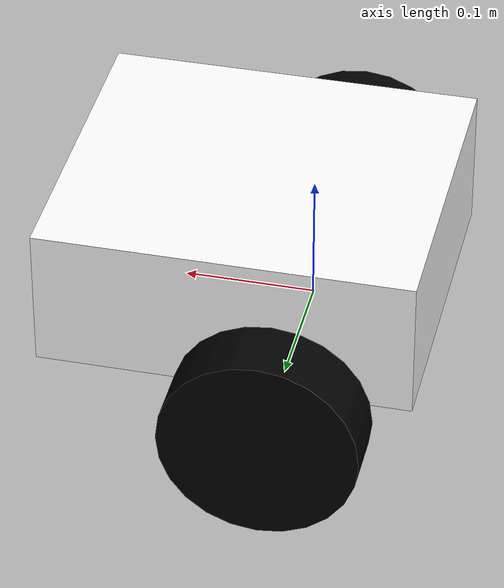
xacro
<?xml version="1.0"?>
<robot xmlns:xacro="http://www.ros.org/wiki/xacro" >

    <xacro:include filename="inertial_macros.xacro"/>

    <material name="white">
        <color rgba="1 1 1 1" />
    </material>

    <material name="orange">
        <color rgba="1 0.3 0.1 1" />
    </material>

    <material name="blue">
        <color rgba="0.2 0.2 1 1" />
    </material>

    <material name="black">
        <color rgba="0 0 0 1" />
    </material>

    <!-- BASE LINK -->

    <link name="base_link">
    </link>

    <!-- CHASSIS LINK -->

    <joint name="chassis_joint" type="fixed">
        <parent link="base_link" />
        <child link="chassis" />
        <origin xyz="-0.1 0 0" />
    </joint>

    <link name="chassis">
        <visual>
            <origin xyz="0.142 0 0.055" />
            <geometry>
                <box size="0.285 0.25 0.11" />
            </geometry>>
            <material name="white" />
        </visual>
        <collision>
            <origin xyz="0.142 0 0.055" />
            <geometry>
                <box size="0.285 0.25 0.11" />
            </geometry>
        </collision>
        <xacro:inertial_box mass="8.0" x="0.285" y="0.25" z="0.11">
            <origin xyz="0.142 0 0.055" rpy="0 0 0"/>
        </xacro:inertial_box>
    </link>

    <gazebo reference="chassis">
        <material>Gazebo/White</material>
    </gazebo>

    <!-- LEFT BACK WHEEL LINK -->
    <joint name="left_back_wheel_joint" type="continuous">
        <parent link="base_link" />
        <child link="left_back_wheel" />
        <origin xyz="0 0.17 0" rpy="-${pi/2} 0 0" />
        <axis xyz="0 0 1" />
    </joint>

    <link name="left_back_wheel">
        <visual>
            <geometry>
                <cylinder radius="0.075" length="0.05" />
            </geometry>
            <material name="black"/>
        </visual>
        <collision>
            <geometry>
                <cylinder radius="0.075" length="0.05" />
            </geometry>
        </collision>
        <xacro:inertial_cylinder mass="1.0" length="0.05" radius="0.075">
            <origin xyz="0 0 0" rpy="0 0 0"/>
        </xacro:inertial_cylinder>
    </link>

    <gazebo reference="left_back_wheel">
        <material>Gazebo/Black</material>
    </gazebo>

    <!-- RIGHT BACK WHEEL LINK -->
    <joint name="right_back_wheel_joint" type="continuous">
        <parent link="base_link" />
        <child link="right_back_wheel" />
        <origin xyz="0 -0.17 0" rpy="${pi/2} 0 0" />
        <axis xyz="0 0 -1" />
    </joint>

    <link name="right_back_wheel">
        <visual>
            <geometry>
                <cylinder radius="0.075" length="0.05" />
            </geometry>
            <material name="black"/>
        </visual>
        <collision>
            <geometry>
                <cylinder radius="0.075" length="0.05" />
            </geometry>
        </collision>
        <xacro:inertial_cylinder mass="1.0" length="0.05" radius="0.075">
            <origin xyz="0 0 0" rpy="0 0 0"/>
        </xacro:inertial_cylinder>
    </link>

    <gazebo reference="right_back_wheel">
        <material>Gazebo/Black</material>
    </gazebo>

    <!-- CASTER WHEEL LINK -->
    <joint name="caster_wheel_joint" type="fixed">
        <parent link="chassis"/>
        <child link="caster_wheel"/>
        <origin xyz="0.2 0 0"/>
    </joint>

    <link name="caster_wheel">
        <visual>
            <geometry>
                <sphere radius="0.07" />
            </geometry>
            <material name="black"/>
        </visual>
        <collision>
            <geometry>
                <sphere radius="0.07" />
            </geometry>
        </collision>
        <xacro:inertial_sphere mass="2.5" radius="0.07">
            <origin xyz="0 0 0" rpy="0 0 0"/>
        </xacro:inertial_sphere>
    </link>

    <gazebo reference="caster_wheel">
        <material>Gazebo/Black</material>
        <mu1 value="0.01"/>
        <mu2 value="0.01"/>
    </gazebo>

</robot>
